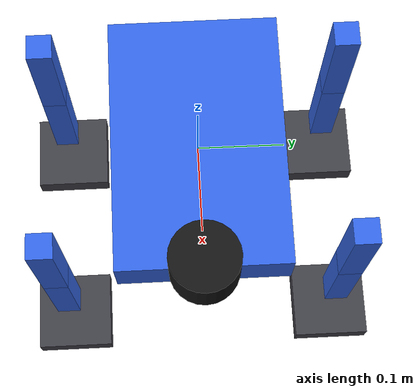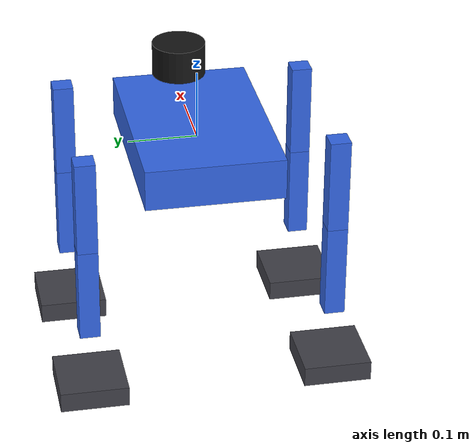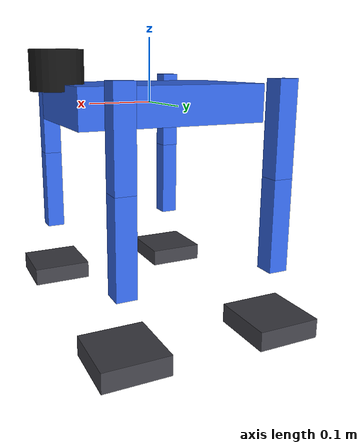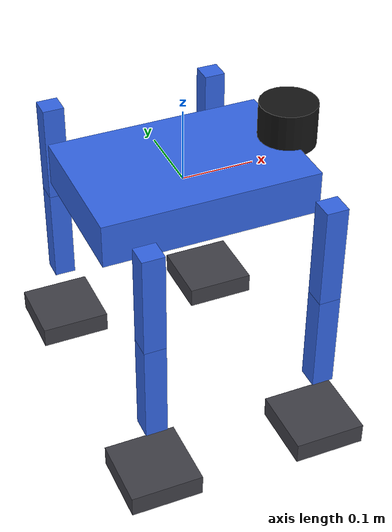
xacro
<?xml version="1.0"?>
<robot xmlns:xacro="http://www.ros.org/wiki/xacro" name="$(arg name)">
  <xacro:arg name="name" default="scout"/>
  <xacro:arg name="ns" default="scout"/>
  <xacro:include filename="$(find lunar_descriptions)/urdf/common.xacro"/>

  <!-- ===== 腿宏：髋 + 膝 + 足，均绕 y 轴（矢状面运动）===== -->
  <xacro:macro name="leg" params="prefix x y">
    <link name="${prefix}_upper_leg">
      <visual>
        <geometry><box size="0.03 0.03 0.14"/></geometry>
        <material name="lunar_blue"/>
      </visual>
      <collision>
        <geometry><box size="0.03 0.03 0.14"/></geometry>
      </collision>
      <xacro:box_inertial mass="0.15" lx="0.03" ly="0.03" lz="0.14"/>
    </link>
    <joint name="${prefix}_hip_joint" type="revolute">
      <parent link="base_link"/>
      <child link="${prefix}_upper_leg"/>
      <origin xyz="${x} ${y} -0.03" rpy="0 0 0"/>
      <axis xyz="0 1 0"/>
      <limit lower="-1.2" upper="1.2" effort="15" velocity="6"/>
    </joint>

    <link name="${prefix}_lower_leg">
      <visual>
        <geometry><box size="0.03 0.03 0.14"/></geometry>
        <material name="lunar_blue"/>
      </visual>
      <collision>
        <geometry><box size="0.03 0.03 0.14"/></geometry>
      </collision>
      <xacro:box_inertial mass="0.1" lx="0.03" ly="0.03" lz="0.14"/>
    </link>
    <joint name="${prefix}_knee_joint" type="revolute">
      <parent link="${prefix}_upper_leg"/>
      <child link="${prefix}_lower_leg"/>
      <origin xyz="0 0 -0.14" rpy="0 0 0"/>
      <axis xyz="0 1 0"/>
      <limit lower="-1.6" upper="1.6" effort="15" velocity="6"/>
    </joint>

    <link name="${prefix}_foot">
      <visual>
        <origin xyz="0 0 -0.015" rpy="0 0 0"/>
        <geometry><box size="0.10 0.10 0.03"/></geometry>
        <material name="lunar_dark"/>
      </visual>
      <collision>
        <origin xyz="0 0 -0.015" rpy="0 0 0"/>
        <geometry><box size="0.10 0.10 0.03"/></geometry>
      </collision>
      <xacro:box_inertial mass="0.05" lx="0.10" ly="0.10" lz="0.03"/>
    </link>
    <!-- 脚关节仍固定在小腿末端 -0.14 处；盒子下移 1.5cm 使底面与竖直站姿着地面齐平 -->
    <joint name="${prefix}_foot_joint" type="fixed">
      <parent link="${prefix}_lower_leg"/>
      <child link="${prefix}_foot"/>
      <origin xyz="0 0 -0.14" rpy="0 0 0"/>
    </joint>
    <!-- 高摩擦：足为刚性连接，步态中足底随小腿倾斜，需更高摩擦防止打滑 -->
    <gazebo reference="${prefix}_foot">
      <mu1>2.0</mu1>
      <mu2>2.0</mu2>
      <kp>1000000.0</kp>
      <kd>100.0</kd>
    </gazebo>
  </xacro:macro>

  <!-- ===== 身体 ===== -->
  <link name="base_link">
    <visual>
      <geometry><box size="0.30 0.20 0.06"/></geometry>
      <material name="lunar_blue"/>
    </visual>
    <collision>
      <geometry><box size="0.30 0.20 0.06"/></geometry>
    </collision>
    <xacro:box_inertial mass="3.0" lx="0.30" ly="0.20" lz="0.06"/>
  </link>
  <gazebo reference="base_link">
    <mu1>0.5</mu1>
    <mu2>0.5</mu2>
  </gazebo>

  <!-- ===== 四条腿（进一步加宽横向间距，抑制侧向翻倒）===== -->
  <xacro:leg prefix="fl" x="0.12" y="0.18"/>
  <xacro:leg prefix="fr" x="0.12" y="-0.18"/>
  <xacro:leg prefix="rl" x="-0.12" y="0.18"/>
  <xacro:leg prefix="rr" x="-0.12" y="-0.18"/>

  <!-- ===== 3D 激光雷达（顶部前侧，输出 sensor_msgs/PointCloud2） ===== -->
  <link name="lidar_link">
    <visual>
      <geometry><cylinder radius="0.04" length="0.06"/></geometry>
      <material name="lunar_black"/>
    </visual>
    <collision>
      <geometry><cylinder radius="0.04" length="0.06"/></geometry>
    </collision>
    <xacro:box_inertial mass="0.1" lx="0.08" ly="0.08" lz="0.06"/>
  </link>
  <joint name="lidar_joint" type="fixed">
    <parent link="base_link"/>
    <child link="lidar_link"/>
    <origin xyz="0.15 0 0.05" rpy="0 0 0"/>
  </joint>
  <gazebo reference="lidar_link">
    <sensor name="lidar" type="ray">
      <pose>0 0 0 0 0 0</pose>
      <ray>
        <scan>
          <horizontal>
            <samples>720</samples>
            <resolution>1</resolution>
            <min_angle>-3.14159265</min_angle>
            <max_angle>3.14159265</max_angle>
          </horizontal>
          <vertical>
            <samples>32</samples>
            <resolution>1</resolution>
            <min_angle>-0.436332</min_angle>
            <max_angle>0.174533</max_angle>
          </vertical>
        </scan>
        <range>
          <min>0.1</min>
          <max>30.0</max>
          <resolution>0.01</resolution>
        </range>
      </ray>
      <always_on>true</always_on>
      <update_rate>10</update_rate>
      <visualize>false</visualize>
      <plugin name="scout_lidar_3d" filename="libgazebo_ros_ray_sensor.so">
        <ros>
          <namespace>/$(arg ns)</namespace>
          <remapping>~/out:=scan_3d</remapping>
        </ros>
        <output_type>sensor_msgs/PointCloud2</output_type>
        <frame_name>$(arg ns)/lidar_link</frame_name>
      </plugin>
    </sensor>
  </gazebo>

  <!-- ===== gazebo_ros2_control 桥接 ===== -->
  <gazebo>
    <plugin filename="libgazebo_ros2_control.so" name="gazebo_ros2_control">
      <robot_param>robot_description</robot_param>
      <robot_param_node>$(arg name)_rsp</robot_param_node>
      <parameters>$(find lunar_control)/config/scout_controllers.yaml</parameters>
      <ros>
        <namespace>$(arg ns)</namespace>
      </ros>
    </plugin>
  </gazebo>

  <ros2_control name="GazeboSystem" type="system">
    <hardware>
      <plugin>gazebo_ros2_control/GazeboSystem</plugin>
    </hardware>
    <xacro:macro name="leg_joints" params="prefix">
      <joint name="${prefix}_hip_joint">
        <command_interface name="position"/>
        <state_interface name="position"/>
      </joint>
      <joint name="${prefix}_knee_joint">
        <command_interface name="position"/>
        <state_interface name="position"/>
      </joint>
    </xacro:macro>
    <xacro:leg_joints prefix="fl"/>
    <xacro:leg_joints prefix="fr"/>
    <xacro:leg_joints prefix="rl"/>
    <xacro:leg_joints prefix="rr"/>
  </ros2_control>
</robot>

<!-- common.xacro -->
<robot xmlns:xacro="http://www.ros.org/wiki/xacro">

  <!-- ===== 材质 ===== -->
  <material name="lunar_grey"><color rgba="0.5 0.5 0.55 1"/></material>
  <material name="lunar_dark"><color rgba="0.25 0.25 0.28 1"/></material>
  <material name="lunar_black"><color rgba="0.08 0.08 0.08 1"/></material>
  <material name="lunar_blue"><color rgba="0.2 0.4 0.9 1"/></material>
  <material name="lunar_orange"><color rgba="0.9 0.5 0.1 1"/></material>
  <material name="lunar_green"><color rgba="0.2 0.8 0.3 1"/></material>
  <material name="lunar_yellow"><color rgba="0.95 0.85 0.2 1"/></material>

  <!-- ===== 盒体质心惯性（单位 SI）===== -->
  <xacro:macro name="box_inertial" params="mass lx ly lz">
    <inertial>
      <mass value="${mass}"/>
      <inertia ixx="${mass*(ly*ly+lz*lz)/12.0}" iyy="${mass*(lx*lx+lz*lz)/12.0}"
               izz="${mass*(lx*lx+ly*ly)/12.0}" ixy="0" ixz="0" iyz="0"/>
    </inertial>
  </xacro:macro>

  <!-- ===== 驱动轮（绕 y 轴滚动，差分驱动用）===== -->
  <xacro:macro name="drive_wheel" params="prefix parent xyz rpy mass radius width">
    <link name="${prefix}_wheel">
      <visual>
        <geometry><cylinder radius="${radius}" length="${width}"/></geometry>
        <material name="lunar_black"/>
      </visual>
      <collision>
        <geometry><cylinder radius="${radius}" length="${width}"/></geometry>
      </collision>
      <inertial>
        <mass value="${mass}"/>
        <inertia ixx="${mass*radius*radius/2.0}" iyy="${mass*radius*radius/2.0}"
                 izz="${mass*radius*radius/2.0}" ixy="0" ixz="0" iyz="0"/>
      </inertial>
    </link>
    <joint name="${prefix}_wheel_joint" type="continuous">
      <parent link="${parent}"/>
      <child link="${prefix}_wheel"/>
      <origin xyz="${xyz}" rpy="${rpy}"/>
      <axis xyz="0 0 -1"/>
      <limit effort="50" velocity="20"/>
      <dynamics damping="0.1"/>
    </joint>
    <gazebo reference="${prefix}_wheel">
      <mu1>1.5</mu1>
      <mu2>1.5</mu2>
    </gazebo>
  </xacro:macro>

  <!-- ===== 低摩擦支撑滑垫（前后各一，保持四点着地稳定）===== -->
  <xacro:macro name="skid_pad" params="prefix parent xyz mass radius">
    <link name="${prefix}_pad">
      <visual>
        <geometry><sphere radius="${radius}"/></geometry>
        <material name="lunar_dark"/>
      </visual>
      <collision>
        <geometry><sphere radius="${radius}"/></geometry>
      </collision>
      <inertial>
        <mass value="${mass}"/>
        <inertia ixx="${2.0*mass*radius*radius/5.0}" iyy="${2.0*mass*radius*radius/5.0}"
                 izz="${2.0*mass*radius*radius/5.0}" ixy="0" ixz="0" iyz="0"/>
      </inertial>
    </link>
    <joint name="${prefix}_pad_joint" type="fixed">
      <parent link="${parent}"/>
      <child link="${prefix}_pad"/>
      <origin xyz="${xyz}" rpy="0 0 0"/>
    </joint>
    <gazebo reference="${prefix}_pad">
      <mu1>0.05</mu1>
      <mu2>0.05</mu2>
    </gazebo>
  </xacro:macro>

  <!-- ===== 普通连杆（盒体）===== -->
  <xacro:macro name="box_link" params="name mass lx ly lz material">
    <link name="${name}">
      <visual>
        <geometry><box size="${lx} ${ly} ${lz}"/></geometry>
        <material name="${material}"/>
      </visual>
      <collision>
        <geometry><box size="${lx} ${ly} ${lz}"/></geometry>
      </collision>
      <xacro:box_inertial mass="${mass}" lx="${lx}" ly="${ly}" lz="${lz}"/>
    </link>
  </xacro:macro>

</robot>
